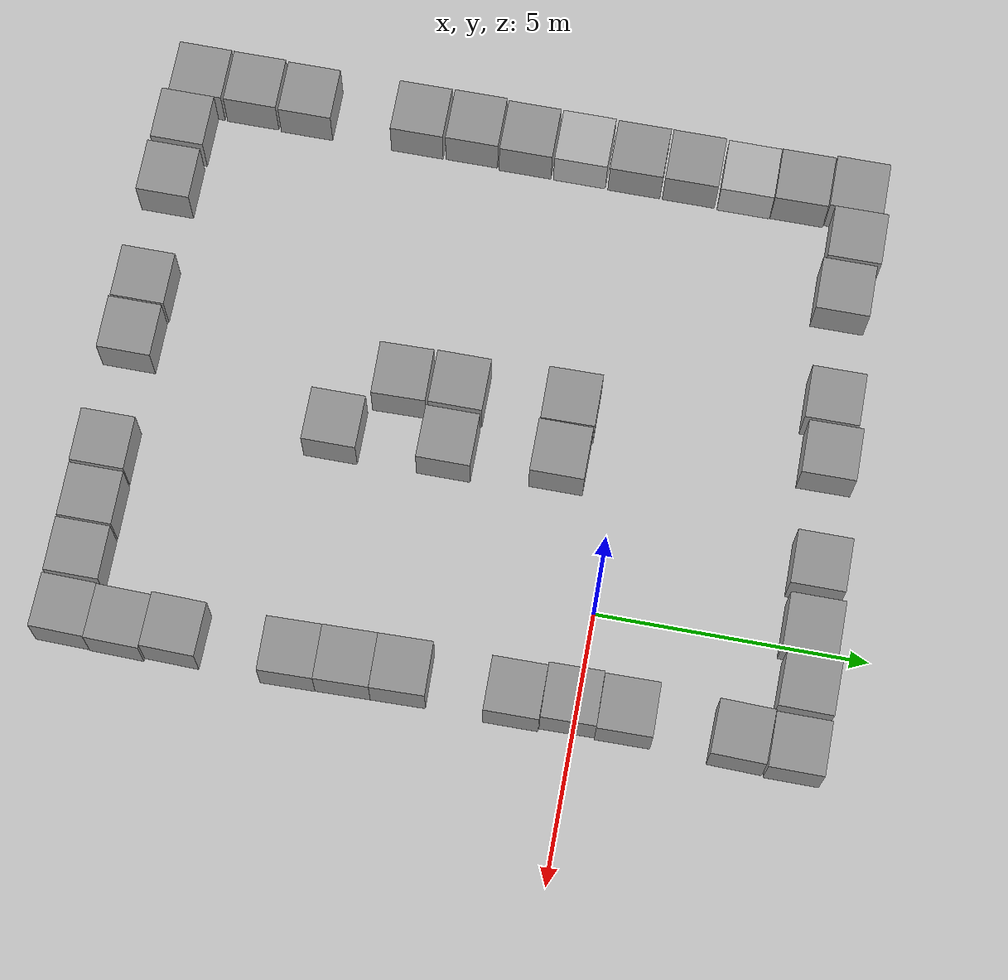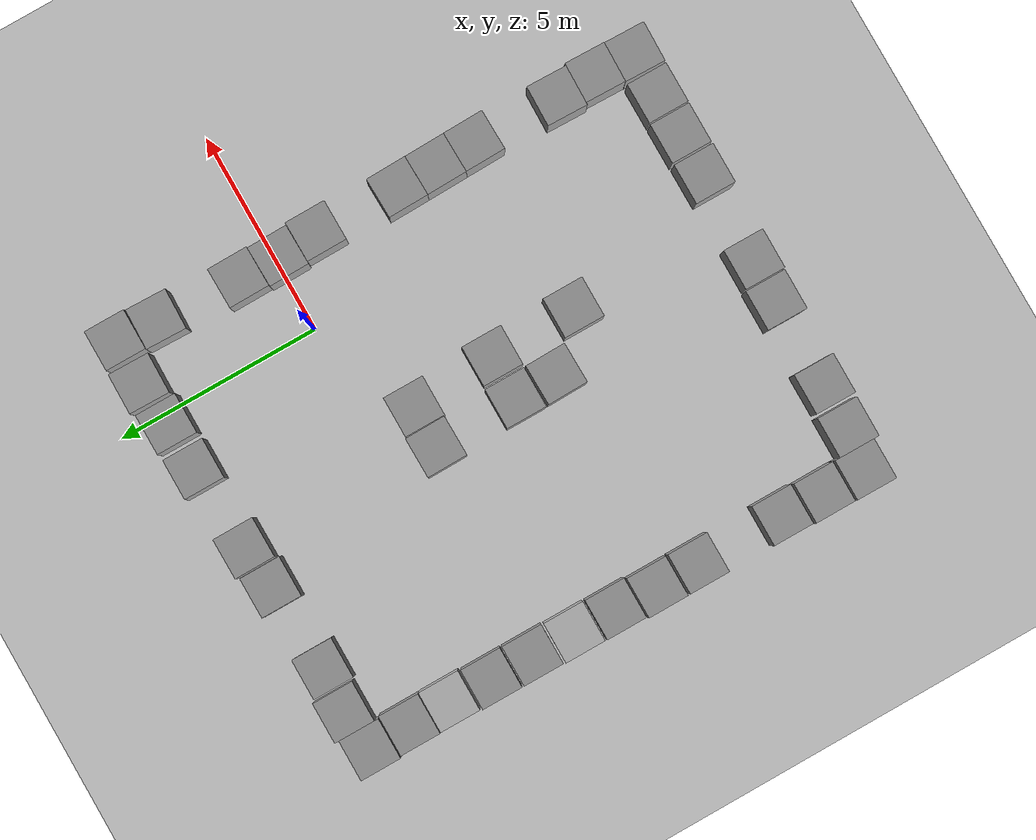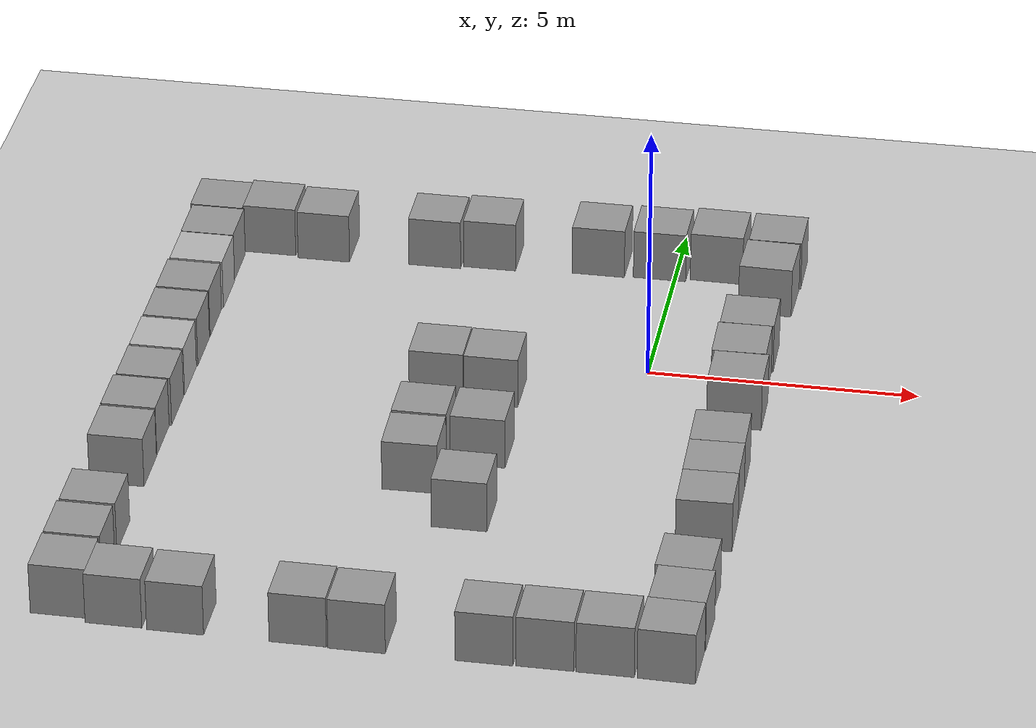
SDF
<sdf version="1.6">
 <world name="default">
  <light name="sun" type="directional">
   <pose>0 0 10 0 -0 0</pose>
   <diffuse>0.8 0.8 0.8 1</diffuse>
   <specular>0.2 0.2 0.2 1</specular>
   <attenuation>
    <range>1000</range>
    <constant>0.9</constant>
    <linear>0.01</linear>
    <quadratic>0.001</quadratic>
   </attenuation>
   <direction>-0.5 0.1 -0.9</direction>
  </light>
  <model name="ground_plane">
   <static>1</static>
   <link name="link">
    <collision name="collision">
     <geometry><plane><normal>0 0 1</normal><size>100 100</size></plane></geometry>
     <surface>
      <contact><collide_bitmask>65535</collide_bitmask></contact>
      <friction><ode><mu>100</mu><mu2>50</mu2></ode></friction>
     </surface>
    </collision>
    <visual name="visual">
     <cast_shadows>0</cast_shadows>
     <geometry><plane><normal>0 0 1</normal><size>100 100</size></plane></geometry>
     <material>
      <script><uri>file://media/materials/scripts/gazebo.material</uri><name>Gazebo/Grey</name></script>
     </material>
    </visual>
   </link>
  </model>
  <gravity>0 0 -9.8</gravity>
  <magnetic_field>6e-06 2.3e-05 -4.2e-05</magnetic_field>
  <atmosphere type="adiabatic"/>
  <physics name="default_physics" default="0" type="ode">
   <max_step_size>0.001</max_step_size>
   <real_time_factor>1</real_time_factor>
   <real_time_update_rate>1000</real_time_update_rate>
  </physics>
  <scene><ambient>0.4 0.4 0.4 1</ambient><background>0.7 0.7 0.7 1</background><shadows>1</shadows></scene>
  <audio><device>default</device></audio>
  <spherical_coordinates>
   <surface_model>EARTH_WGS84</surface_model>
   <latitude_deg>0</latitude_deg>
   <longitude_deg>0</longitude_deg>
   <elevation>0</elevation>
   <heading_deg>0</heading_deg>
  </spherical_coordinates>
  <model name="unit_box">
   <pose>-8.73208 0.394657 0.499995 1e-05 -0 -0.00012</pose>
   <link name="link">
    <inertial>
     <mass>1</mass>
     <inertia>
      <ixx>0.166667</ixx>
      <ixy>0</ixy>
      <ixz>0</ixz>
      <iyy>0.166667</iyy>
      <iyz>0</iyz>
      <izz>0.166667</izz>
     </inertia>
    </inertial>
    <collision name="collision"><geometry><box><size>1 1 1</size></box></geometry></collision>
    <visual name="visual">
     <geometry><box><size>1 1 1</size></box></geometry>
     <material>
      <script><name>Gazebo/Grey</name><uri>file://media/materials/scripts/gazebo.material</uri></script>
     </material>
    </visual>
   </link>
  </model>
  <model name="unit_box_1">
   <pose>-8.73525 -0.650647 0.499995 1e-05 -0 0</pose>
   <link name="link">
    <inertial>
     <mass>1</mass>
     <inertia>
      <ixx>0.166667</ixx>
      <ixy>0</ixy>
      <ixz>0</ixz>
      <iyy>0.166667</iyy>
      <iyz>0</iyz>
      <izz>0.166667</izz>
     </inertia>
    </inertial>
    <collision name="collision"><geometry><box><size>1 1 1</size></box></geometry></collision>
    <visual name="visual">
     <geometry><box><size>1 1 1</size></box></geometry>
     <material>
      <script><name>Gazebo/Grey</name><uri>file://media/materials/scripts/gazebo.material</uri></script>
     </material>
    </visual>
   </link>
  </model>
  <model name="unit_box_4">
   <pose>-2.54839 -3.15473 0.499995 1e-05 -0 0</pose>
   <link name="link">
    <inertial>
     <mass>1</mass>
     <inertia>
      <ixx>0.166667</ixx>
      <ixy>0</ixy>
      <ixz>0</ixz>
      <iyy>0.166667</iyy>
      <iyz>0</iyz>
      <izz>0.166667</izz>
     </inertia>
    </inertial>
    <collision name="collision"><geometry><box><size>1 1 1</size></box></geometry></collision>
    <visual name="visual">
     <geometry><box><size>1 1 1</size></box></geometry>
     <material>
      <script><name>Gazebo/Grey</name><uri>file://media/materials/scripts/gazebo.material</uri></script>
     </material>
    </visual>
   </link>
  </model>
  <model name="unit_box_6">
   <pose>-3.60588 -4.19146 0.499995 1e-05 -0 0.018583</pose>
   <link name="link">
    <inertial>
     <mass>1</mass>
     <inertia>
      <ixx>0.166667</ixx>
      <ixy>0</ixy>
      <ixz>0</ixz>
      <iyy>0.166667</iyy>
      <iyz>0</iyz>
      <izz>0.166667</izz>
     </inertia>
    </inertial>
    <collision name="collision"><geometry><box><size>1 1 1</size></box></geometry></collision>
    <visual name="visual">
     <geometry><box><size>1 1 1</size></box></geometry>
     <material>
      <script><name>Gazebo/Grey</name><uri>file://media/materials/scripts/gazebo.material</uri></script>
     </material>
    </visual>
   </link>
  </model>
  <model name="unit_box_8">
   <pose>-2.50852 -5.25525 0.499995 1e-05 -0 0</pose>
   <link name="link">
    <inertial>
     <mass>1</mass>
     <inertia>
      <ixx>0.166667</ixx>
      <ixy>0</ixy>
      <ixz>0</ixz>
      <iyy>0.166667</iyy>
      <iyz>0</iyz>
      <izz>0.166667</izz>
     </inertia>
    </inertial>
    <collision name="collision"><geometry><box><size>1 1 1</size></box></geometry></collision>
    <visual name="visual">
     <geometry><box><size>1 1 1</size></box></geometry>
     <material>
      <script><name>Gazebo/Grey</name><uri>file://media/materials/scripts/gazebo.material</uri></script>
     </material>
    </visual>
   </link>
  </model>
  <model name="unit_box_10">
   <pose>-3.62264 -3.13659 0.499995 1e-05 -0 0</pose>
   <link name="link">
    <inertial>
     <mass>1</mass>
     <inertia>
      <ixx>0.166667</ixx>
      <ixy>0</ixy>
      <ixz>0</ixz>
      <iyy>0.166667</iyy>
      <iyz>0</iyz>
      <izz>0.166667</izz>
     </inertia>
    </inertial>
    <collision name="collision"><geometry><box><size>1 1 1</size></box></geometry></collision>
    <visual name="visual">
     <geometry><box><size>1 1 1</size></box></geometry>
     <material>
      <script><name>Gazebo/Grey</name><uri>file://media/materials/scripts/gazebo.material</uri></script>
     </material>
    </visual>
   </link>
  </model>
  <model name="unit_box_13">
   <pose>-8.75933 -2.74939 0.499995 1e-05 -0 0</pose>
   <link name="link">
    <inertial>
     <mass>1</mass>
     <inertia>
      <ixx>0.166667</ixx>
      <ixy>0</ixy>
      <ixz>0</ixz>
      <iyy>0.166667</iyy>
      <iyz>0</iyz>
      <izz>0.166667</izz>
     </inertia>
    </inertial>
    <collision name="collision"><geometry><box><size>1 1 1</size></box></geometry></collision>
    <visual name="visual">
     <geometry><box><size>1 1 1</size></box></geometry>
     <material>
      <script><name>Gazebo/Grey</name><uri>file://media/materials/scripts/gazebo.material</uri></script>
     </material>
    </visual>
   </link>
  </model>
  <model name="unit_box_14">
   <pose>-8.79847 -3.78613 0.499995 0 1e-05 0</pose>
   <link name="link">
    <inertial>
     <mass>1</mass>
     <inertia>
      <ixx>0.166667</ixx>
      <ixy>0</ixy>
      <ixz>0</ixz>
      <iyy>0.166667</iyy>
      <iyz>0</iyz>
      <izz>0.166667</izz>
     </inertia>
    </inertial>
    <collision name="collision"><geometry><box><size>1 1 1</size></box></geometry></collision>
    <visual name="visual">
     <geometry><box><size>1 1 1</size></box></geometry>
     <material>
      <script><name>Gazebo/Grey</name><uri>file://media/materials/scripts/gazebo.material</uri></script>
     </material>
    </visual>
   </link>
  </model>
  <model name="unit_box_15">
   <pose>-8.79378 -4.83925 0.499995 1e-05 -0 0</pose>
   <link name="link">
    <inertial>
     <mass>1</mass>
     <inertia>
      <ixx>0.166667</ixx>
      <ixy>0</ixy>
      <ixz>0</ixz>
      <iyy>0.166667</iyy>
      <iyz>0</iyz>
      <izz>0.166667</izz>
     </inertia>
    </inertial>
    <collision name="collision"><geometry><box><size>1 1 1</size></box></geometry></collision>
    <visual name="visual">
     <geometry><box><size>1 1 1</size></box></geometry>
     <material>
      <script><name>Gazebo/Grey</name><uri>file://media/materials/scripts/gazebo.material</uri></script>
     </material>
    </visual>
   </link>
  </model>
  <model name="unit_box_17">
   <pose>-8.79105 -6.9817 0.499995 1e-05 -0 0</pose>
   <link name="link">
    <inertial>
     <mass>1</mass>
     <inertia>
      <ixx>0.166667</ixx>
      <ixy>0</ixy>
      <ixz>0</ixz>
      <iyy>0.166667</iyy>
      <iyz>0</iyz>
      <izz>0.166667</izz>
     </inertia>
    </inertial>
    <collision name="collision"><geometry><box><size>1 1 1</size></box></geometry></collision>
    <visual name="visual">
     <geometry><box><size>1 1 1</size></box></geometry>
     <material>
      <script><name>Gazebo/Grey</name><uri>file://media/materials/scripts/gazebo.material</uri></script>
     </material>
    </visual>
   </link>
  </model>
  <model name="unit_box_18">
   <pose>-8.81822 -8.03716 0.499995 0 1e-05 0</pose>
   <link name="link">
    <inertial>
     <mass>1</mass>
     <inertia>
      <ixx>0.166667</ixx>
      <ixy>0</ixy>
      <ixz>0</ixz>
      <iyy>0.166667</iyy>
      <iyz>0</iyz>
      <izz>0.166667</izz>
     </inertia>
    </inertial>
    <collision name="collision"><geometry><box><size>1 1 1</size></box></geometry></collision>
    <visual name="visual">
     <geometry><box><size>1 1 1</size></box></geometry>
     <material>
      <script><name>Gazebo/Grey</name><uri>file://media/materials/scripts/gazebo.material</uri></script>
     </material>
    </visual>
   </link>
  </model>
  <model name="unit_box_19">
   <pose>-8.82789 -9.08499 0.499995 1e-05 -0 -0.003825</pose>
   <link name="link">
    <inertial>
     <mass>1</mass>
     <inertia>
      <ixx>0.166667</ixx>
      <ixy>0</ixy>
      <ixz>0</ixz>
      <iyy>0.166667</iyy>
      <iyz>0</iyz>
      <izz>0.166667</izz>
     </inertia>
    </inertial>
    <collision name="collision"><geometry><box><size>1 1 1</size></box></geometry></collision>
    <visual name="visual">
     <geometry><box><size>1 1 1</size></box></geometry>
     <material>
      <script><name>Gazebo/Grey</name><uri>file://media/materials/scripts/gazebo.material</uri></script>
     </material>
    </visual>
   </link>
  </model>
  <model name="unit_box_20">
   <pose>-7.82836 -9.21753 0.499995 1e-05 -0 -0.003821</pose>
   <link name="link">
    <inertial>
     <mass>1</mass>
     <inertia>
      <ixx>0.166667</ixx>
      <ixy>0</ixy>
      <ixz>0</ixz>
      <iyy>0.166667</iyy>
      <iyz>0</iyz>
      <izz>0.166667</izz>
     </inertia>
    </inertial>
    <collision name="collision"><geometry><box><size>1 1 1</size></box></geometry></collision>
    <visual name="visual">
     <geometry><box><size>1 1 1</size></box></geometry>
     <material>
      <script><name>Gazebo/Grey</name><uri>file://media/materials/scripts/gazebo.material</uri></script>
     </material>
    </visual>
   </link>
  </model>
  <model name="unit_box_21">
   <pose>-6.73771 -9.24958 0.499995 0 -1e-05 -0.002543</pose>
   <link name="link">
    <inertial>
     <mass>1</mass>
     <inertia>
      <ixx>0.166667</ixx>
      <ixy>0</ixy>
      <ixz>0</ixz>
      <iyy>0.166667</iyy>
      <iyz>0</iyz>
      <izz>0.166667</izz>
     </inertia>
    </inertial>
    <collision name="collision"><geometry><box><size>1 1 1</size></box></geometry></collision>
    <visual name="visual">
     <geometry><box><size>1 1 1</size></box></geometry>
     <material>
      <script><name>Gazebo/Grey</name><uri>file://media/materials/scripts/gazebo.material</uri></script>
     </material>
    </visual>
   </link>
  </model>
  <model name="unit_box_23">
   <pose>-4.59276 -9.25098 0.499995 1e-05 0 -0.00204</pose>
   <link name="link">
    <inertial>
     <mass>1</mass>
     <inertia>
      <ixx>0.166667</ixx>
      <ixy>0</ixy>
      <ixz>0</ixz>
      <iyy>0.166667</iyy>
      <iyz>0</iyz>
      <izz>0.166667</izz>
     </inertia>
    </inertial>
    <collision name="collision"><geometry><box><size>1 1 1</size></box></geometry></collision>
    <visual name="visual">
     <geometry><box><size>1 1 1</size></box></geometry>
     <material>
      <script><name>Gazebo/Grey</name><uri>file://media/materials/scripts/gazebo.material</uri></script>
     </material>
    </visual>
   </link>
  </model>
  <model name="unit_box_24">
   <pose>-3.56354 -9.2781 0.499995 0 -1e-05 -0.002492</pose>
   <link name="link">
    <inertial>
     <mass>1</mass>
     <inertia>
      <ixx>0.166667</ixx>
      <ixy>0</ixy>
      <ixz>0</ixz>
      <iyy>0.166667</iyy>
      <iyz>0</iyz>
      <izz>0.166667</izz>
     </inertia>
    </inertial>
    <collision name="collision"><geometry><box><size>1 1 1</size></box></geometry></collision>
    <visual name="visual">
     <geometry><box><size>1 1 1</size></box></geometry>
     <material>
      <script><name>Gazebo/Grey</name><uri>file://media/materials/scripts/gazebo.material</uri></script>
     </material>
    </visual>
   </link>
  </model>
  <model name="unit_box_26">
   <pose>-1.35991 -9.27565 0.499995 0 1e-05 -0.000116</pose>
   <link name="link">
    <inertial>
     <mass>1</mass>
     <inertia>
      <ixx>0.166667</ixx>
      <ixy>0</ixy>
      <ixz>0</ixz>
      <iyy>0.166667</iyy>
      <iyz>0</iyz>
      <izz>0.166667</izz>
     </inertia>
    </inertial>
    <collision name="collision"><geometry><box><size>1 1 1</size></box></geometry></collision>
    <visual name="visual">
     <geometry><box><size>1 1 1</size></box></geometry>
     <material>
      <script><name>Gazebo/Grey</name><uri>file://media/materials/scripts/gazebo.material</uri></script>
     </material>
    </visual>
   </link>
  </model>
  <model name="unit_box_27">
   <pose>-0.310451 -9.26346 0.499995 -1e-05 0 -0.000115</pose>
   <link name="link">
    <inertial>
     <mass>1</mass>
     <inertia>
      <ixx>0.166667</ixx>
      <ixy>0</ixy>
      <ixz>0</ixz>
      <iyy>0.166667</iyy>
      <iyz>0</iyz>
      <izz>0.166667</izz>
     </inertia>
    </inertial>
    <collision name="collision"><geometry><box><size>1 1 1</size></box></geometry></collision>
    <visual name="visual">
     <geometry><box><size>1 1 1</size></box></geometry>
     <material>
      <script><name>Gazebo/Grey</name><uri>file://media/materials/scripts/gazebo.material</uri></script>
     </material>
    </visual>
   </link>
  </model>
  <model name="unit_box_28">
   <pose>0.725361 -9.26797 0.499995 1e-05 -0 0</pose>
   <link name="link">
    <inertial>
     <mass>1</mass>
     <inertia>
      <ixx>0.166667</ixx>
      <ixy>0</ixy>
      <ixz>0</ixz>
      <iyy>0.166667</iyy>
      <iyz>0</iyz>
      <izz>0.166667</izz>
     </inertia>
    </inertial>
    <collision name="collision"><geometry><box><size>1 1 1</size></box></geometry></collision>
    <visual name="visual">
     <geometry><box><size>1 1 1</size></box></geometry>
     <material>
      <script><name>Gazebo/Grey</name><uri>file://media/materials/scripts/gazebo.material</uri></script>
     </material>
    </visual>
   </link>
  </model>
  <model name="unit_box_29">
   <pose>1.81642 -8.28523 0.499995 0 1e-05 -0.020586</pose>
   <link name="link">
    <inertial>
     <mass>1</mass>
     <inertia>
      <ixx>0.166667</ixx>
      <ixy>0</ixy>
      <ixz>0</ixz>
      <iyy>0.166667</iyy>
      <iyz>0</iyz>
      <izz>0.166667</izz>
     </inertia>
    </inertial>
    <collision name="collision"><geometry><box><size>1 1 1</size></box></geometry></collision>
    <visual name="visual">
     <geometry><box><size>1 1 1</size></box></geometry>
     <material>
      <script><name>Gazebo/Grey</name><uri>file://media/materials/scripts/gazebo.material</uri></script>
     </material>
    </visual>
   </link>
  </model>
  <model name="unit_box_30">
   <pose>1.78155 -7.28421 0.499995 0 1e-05 -0.020586</pose>
   <link name="link">
    <inertial>
     <mass>1</mass>
     <inertia>
      <ixx>0.166667</ixx>
      <ixy>0</ixy>
      <ixz>0</ixz>
      <iyy>0.166667</iyy>
      <iyz>0</iyz>
      <izz>0.166667</izz>
     </inertia>
    </inertial>
    <collision name="collision"><geometry><box><size>1 1 1</size></box></geometry></collision>
    <visual name="visual">
     <geometry><box><size>1 1 1</size></box></geometry>
     <material>
      <script><name>Gazebo/Grey</name><uri>file://media/materials/scripts/gazebo.material</uri></script>
     </material>
    </visual>
   </link>
  </model>
  <model name="unit_box_32">
   <pose>1.81822 -5.17697 0.5 0 -0 0.023434</pose>
   <link name="link">
    <inertial>
     <mass>1</mass>
     <inertia>
      <ixx>0.166667</ixx>
      <ixy>0</ixy>
      <ixz>0</ixz>
      <iyy>0.166667</iyy>
      <iyz>0</iyz>
      <izz>0.166667</izz>
     </inertia>
    </inertial>
    <collision name="collision"><geometry><box><size>1 1 1</size></box></geometry></collision>
    <visual name="visual">
     <geometry><box><size>1 1 1</size></box></geometry>
     <material>
      <script><name>Gazebo/Grey</name><uri>file://media/materials/scripts/gazebo.material</uri></script>
     </material>
    </visual>
   </link>
  </model>
  <model name="unit_box_33">
   <pose>1.7916 -4.17732 0.499995 0 1e-05 0.023434</pose>
   <link name="link">
    <inertial>
     <mass>1</mass>
     <inertia>
      <ixx>0.166667</ixx>
      <ixy>0</ixy>
      <ixz>0</ixz>
      <iyy>0.166667</iyy>
      <iyz>0</iyz>
      <izz>0.166667</izz>
     </inertia>
    </inertial>
    <collision name="collision"><geometry><box><size>1 1 1</size></box></geometry></collision>
    <visual name="visual">
     <geometry><box><size>1 1 1</size></box></geometry>
     <material>
      <script><name>Gazebo/Grey</name><uri>file://media/materials/scripts/gazebo.material</uri></script>
     </material>
    </visual>
   </link>
  </model>
  <model name="unit_box_37">
   <pose>1.75968 0.885156 0.499995 1e-05 -0 0.012187</pose>
   <link name="link">
    <inertial>
     <mass>1</mass>
     <inertia>
      <ixx>0.166667</ixx>
      <ixy>0</ixy>
      <ixz>0</ixz>
      <iyy>0.166667</iyy>
      <iyz>0</iyz>
      <izz>0.166667</izz>
     </inertia>
    </inertial>
    <collision name="collision"><geometry><box><size>1 1 1</size></box></geometry></collision>
    <visual name="visual">
     <geometry><box><size>1 1 1</size></box></geometry>
     <material>
      <script><name>Gazebo/Grey</name><uri>file://media/materials/scripts/gazebo.material</uri></script>
     </material>
    </visual>
   </link>
  </model>
  <model name="unit_box_39">
   <pose>-1.45561 3.83114 0.499995 1e-05 -0 5.9e-05</pose>
   <link name="link">
    <inertial>
     <mass>1</mass>
     <inertia>
      <ixx>0.166667</ixx>
      <ixy>0</ixy>
      <ixz>0</ixz>
      <iyy>0.166667</iyy>
      <iyz>0</iyz>
      <izz>0.166667</izz>
     </inertia>
    </inertial>
    <collision name="collision"><geometry><box><size>1 1 1</size></box></geometry></collision>
    <visual name="visual">
     <geometry><box><size>1 1 1</size></box></geometry>
     <material>
      <script><name>Gazebo/Grey</name><uri>file://media/materials/scripts/gazebo.material</uri></script>
     </material>
    </visual>
   </link>
  </model>
  <model name="unit_box_40">
   <pose>-0.290687 3.86971 0.499995 1e-05 -0 0</pose>
   <link name="link">
    <inertial>
     <mass>1</mass>
     <inertia>
      <ixx>0.166667</ixx>
      <ixy>0</ixy>
      <ixz>0</ixz>
      <iyy>0.166667</iyy>
      <iyz>0</iyz>
      <izz>0.166667</izz>
     </inertia>
    </inertial>
    <collision name="collision"><geometry><box><size>1 1 1</size></box></geometry></collision>
    <visual name="visual">
     <geometry><box><size>1 1 1</size></box></geometry>
     <material>
      <script><name>Gazebo/Grey</name><uri>file://media/materials/scripts/gazebo.material</uri></script>
     </material>
    </visual>
   </link>
  </model>
  <model name="unit_box_42">
   <pose>0.79205 3.95614 0.499995 1e-05 -0 -0.012034</pose>
   <link name="link">
    <inertial>
     <mass>1</mass>
     <inertia>
      <ixx>0.166667</ixx>
      <ixy>0</ixy>
      <ixz>0</ixz>
      <iyy>0.166667</iyy>
      <iyz>0</iyz>
      <izz>0.166667</izz>
     </inertia>
    </inertial>
    <collision name="collision"><geometry><box><size>1 1 1</size></box></geometry></collision>
    <visual name="visual">
     <geometry><box><size>1 1 1</size></box></geometry>
     <material>
      <script><name>Gazebo/Grey</name><uri>file://media/materials/scripts/gazebo.material</uri></script>
     </material>
    </visual>
   </link>
  </model>
  <model name="unit_box_43">
   <pose>1.85421 2.92949 0.499995 1e-05 -0 -0.023604</pose>
   <link name="link">
    <inertial>
     <mass>1</mass>
     <inertia>
      <ixx>0.166667</ixx>
      <ixy>0</ixy>
      <ixz>0</ixz>
      <iyy>0.166667</iyy>
      <iyz>0</iyz>
      <izz>0.166667</izz>
     </inertia>
    </inertial>
    <collision name="collision"><geometry><box><size>1 1 1</size></box></geometry></collision>
    <visual name="visual">
     <geometry><box><size>1 1 1</size></box></geometry>
     <material>
      <script><name>Gazebo/Grey</name><uri>file://media/materials/scripts/gazebo.material</uri></script>
     </material>
    </visual>
   </link>
  </model>
  <model name="unit_box_45">
   <pose>-3.53266 3.72336 0.499995 0 1e-05 0.00487</pose>
   <link name="link">
    <inertial>
     <mass>1</mass>
     <inertia>
      <ixx>0.166667</ixx>
      <ixy>0</ixy>
      <ixz>0</ixz>
      <iyy>0.166667</iyy>
      <iyz>0</iyz>
      <izz>0.166667</izz>
     </inertia>
    </inertial>
    <collision name="collision"><geometry><box><size>1 1 1</size></box></geometry></collision>
    <visual name="visual">
     <geometry><box><size>1 1 1</size></box></geometry>
     <material>
      <script><name>Gazebo/Grey</name><uri>file://media/materials/scripts/gazebo.material</uri></script>
     </material>
    </visual>
   </link>
  </model>
  <model name="unit_box_46">
   <pose>-4.57517 3.63076 0.499995 -1e-05 0 0.00262</pose>
   <link name="link">
    <inertial>
     <mass>1</mass>
     <inertia>
      <ixx>0.166667</ixx>
      <ixy>0</ixy>
      <ixz>0</ixz>
      <iyy>0.166667</iyy>
      <iyz>0</iyz>
      <izz>0.166667</izz>
     </inertia>
    </inertial>
    <collision name="collision"><geometry><box><size>1 1 1</size></box></geometry></collision>
    <visual name="visual">
     <geometry><box><size>1 1 1</size></box></geometry>
     <material>
      <script><name>Gazebo/Grey</name><uri>file://media/materials/scripts/gazebo.material</uri></script>
     </material>
    </visual>
   </link>
  </model>
  <model name="unit_box_48">
   <pose>-6.70132 3.5177 0.499995 0 1e-05 0</pose>
   <link name="link">
    <inertial>
     <mass>1</mass>
     <inertia>
      <ixx>0.166667</ixx>
      <ixy>0</ixy>
      <ixz>0</ixz>
      <iyy>0.166667</iyy>
      <iyz>0</iyz>
      <izz>0.166667</izz>
     </inertia>
    </inertial>
    <collision name="collision"><geometry><box><size>1 1 1</size></box></geometry></collision>
    <visual name="visual">
     <geometry><box><size>1 1 1</size></box></geometry>
     <material>
      <script><name>Gazebo/Grey</name><uri>file://media/materials/scripts/gazebo.material</uri></script>
     </material>
    </visual>
   </link>
  </model>
  <model name="unit_box_49">
   <pose>-7.75877 3.58603 0.499995 -0 -1e-05 0.000444</pose>
   <link name="link">
    <inertial>
     <mass>1</mass>
     <inertia>
      <ixx>0.166667</ixx>
      <ixy>0</ixy>
      <ixz>0</ixz>
      <iyy>0.166667</iyy>
      <iyz>0</iyz>
      <izz>0.166667</izz>
     </inertia>
    </inertial>
    <collision name="collision"><geometry><box><size>1 1 1</size></box></geometry></collision>
    <visual name="visual">
     <geometry><box><size>1 1 1</size></box></geometry>
     <material>
      <script><name>Gazebo/Grey</name><uri>file://media/materials/scripts/gazebo.material</uri></script>
     </material>
    </visual>
   </link>
  </model>
  <model name="unit_box_50">
   <pose>-8.75874 3.48617 0.499995 1e-05 -0 0.000434</pose>
   <link name="link">
    <inertial>
     <mass>1</mass>
     <inertia>
      <ixx>0.166667</ixx>
      <ixy>0</ixy>
      <ixz>0</ixz>
      <iyy>0.166667</iyy>
      <iyz>0</iyz>
      <izz>0.166667</izz>
     </inertia>
    </inertial>
    <collision name="collision"><geometry><box><size>1 1 1</size></box></geometry></collision>
    <visual name="visual">
     <geometry><box><size>1 1 1</size></box></geometry>
     <material>
      <script><name>Gazebo/Grey</name><uri>file://media/materials/scripts/gazebo.material</uri></script>
     </material>
    </visual>
   </link>
  </model>
  <model name="unit_box_51">
   <pose>-8.71677 2.46298 0.499995 1e-05 -0 0.000652</pose>
   <link name="link">
    <inertial>
     <mass>1</mass>
     <inertia>
      <ixx>0.166667</ixx>
      <ixy>0</ixy>
      <ixz>0</ixz>
      <iyy>0.166667</iyy>
      <iyz>0</iyz>
      <izz>0.166667</izz>
     </inertia>
    </inertial>
    <collision name="collision"><geometry><box><size>1 1 1</size></box></geometry></collision>
    <visual name="visual">
     <geometry><box><size>1 1 1</size></box></geometry>
     <material>
      <script><name>Gazebo/Grey</name><uri>file://media/materials/scripts/gazebo.material</uri></script>
     </material>
    </visual>
   </link>
  </model>
  <light name="user_point_light_0" type="point">
   <pose>-6.14571 -6.63651 1 0 -0 0</pose>
   <diffuse>0.5 0.5 0.5 1</diffuse>
   <specular>0.1 0.1 0.1 1</specular>
   <attenuation>
    <range>20</range>
    <constant>0.5</constant>
    <linear>0.01</linear>
    <quadratic>0.001</quadratic>
   </attenuation>
   <cast_shadows>0</cast_shadows>
   <direction>0 0 -1</direction>
  </light>
  <light name="user_point_light_1" type="point">
   <pose>-6.11805 1.067 1 0 -0 0</pose>
   <diffuse>0.5 0.5 0.5 1</diffuse>
   <specular>0.1 0.1 0.1 1</specular>
   <attenuation>
    <range>20</range>
    <constant>0.5</constant>
    <linear>0.01</linear>
    <quadratic>0.001</quadratic>
   </attenuation>
   <cast_shadows>0</cast_shadows>
   <direction>0 0 -1</direction>
  </light>
  <light name="user_point_light_2" type="point">
   <pose>-0.573578 1.35587 1 0 -0 0</pose>
   <diffuse>0.5 0.5 0.5 1</diffuse>
   <specular>0.1 0.1 0.1 1</specular>
   <attenuation>
    <range>20</range>
    <constant>0.5</constant>
    <linear>0.01</linear>
    <quadratic>0.001</quadratic>
   </attenuation>
   <cast_shadows>0</cast_shadows>
   <direction>0 0 -1</direction>
  </light>
  <light name="user_point_light_3" type="point">
   <pose>-1.02944 -6.8098 1 0 -0 0</pose>
   <diffuse>0.5 0.5 0.5 1</diffuse>
   <specular>0.1 0.1 0.1 1</specular>
   <attenuation>
    <range>20</range>
    <constant>0.5</constant>
    <linear>0.01</linear>
    <quadratic>0.001</quadratic>
   </attenuation>
   <cast_shadows>0</cast_shadows>
   <direction>0 0 -1</direction>
  </light>
  <model name="unit_box_11">
   <pose>-3.69055 -1.07429 0.499995 0 1e-05 0.011327</pose>
   <link name="link">
    <inertial>
     <mass>1</mass>
     <inertia>
      <ixx>0.166667</ixx>
      <ixy>0</ixy>
      <ixz>0</ixz>
      <iyy>0.166667</iyy>
      <iyz>0</iyz>
      <izz>0.166667</izz>
     </inertia>
    </inertial>
    <collision name="collision"><geometry><box><size>1 1 1</size></box></geometry></collision>
    <visual name="visual">
     <geometry><box><size>1 1 1</size></box></geometry>
     <material>
      <script><name>Gazebo/Grey</name><uri>file://media/materials/scripts/gazebo.material</uri></script>
     </material>
    </visual>
   </link>
  </model>
  <model name="unit_box_12">
   <pose>-2.66997 -1.09032 0.499995 1e-05 -0 0</pose>
   <link name="link">
    <inertial>
     <mass>1</mass>
     <inertia>
      <ixx>0.166667</ixx>
      <ixy>0</ixy>
      <ixz>0</ixz>
      <iyy>0.166667</iyy>
      <iyz>0</iyz>
      <izz>0.166667</izz>
     </inertia>
    </inertial>
    <collision name="collision"><geometry><box><size>1 1 1</size></box></geometry></collision>
    <visual name="visual">
     <geometry><box><size>1 1 1</size></box></geometry>
     <material>
      <script><name>Gazebo/Grey</name><uri>file://media/materials/scripts/gazebo.material</uri></script>
     </material>
    </visual>
   </link>
  </model>
  <model name="unit_box_34">
   <pose>1.76818 -3.17725 0.5 0 -0 0.024117</pose>
   <link name="link">
    <inertial>
     <mass>1</mass>
     <inertia>
      <ixx>0.166667</ixx>
      <ixy>0</ixy>
      <ixz>0</ixz>
      <iyy>0.166667</iyy>
      <iyz>0</iyz>
      <izz>0.166667</izz>
     </inertia>
    </inertial>
    <collision name="collision"><geometry><box><size>1 1 1</size></box></geometry></collision>
    <visual name="visual">
     <geometry><box><size>1 1 1</size></box></geometry>
     <material>
      <script><name>Gazebo/Grey</name><uri>file://media/materials/scripts/gazebo.material</uri></script>
     </material>
    </visual>
   </link>
  </model>
  <model name="unit_box_36">
   <pose>1.80821 -1.12179 0.499995 0 1e-05 0.007681</pose>
   <link name="link">
    <inertial>
     <mass>1</mass>
     <inertia>
      <ixx>0.166667</ixx>
      <ixy>0</ixy>
      <ixz>0</ixz>
      <iyy>0.166667</iyy>
      <iyz>0</iyz>
      <izz>0.166667</izz>
     </inertia>
    </inertial>
    <collision name="collision"><geometry><box><size>1 1 1</size></box></geometry></collision>
    <visual name="visual">
     <geometry><box><size>1 1 1</size></box></geometry>
     <material>
      <script><name>Gazebo/Grey</name><uri>file://media/materials/scripts/gazebo.material</uri></script>
     </material>
    </visual>
   </link>
  </model>
  <model name="unit_box_52">
   <pose>1.74259 -0.118035 0.499995 1e-05 -0 0.017177</pose>
   <link name="link">
    <inertial>
     <mass>1</mass>
     <inertia>
      <ixx>0.166667</ixx>
      <ixy>0</ixy>
      <ixz>0</ixz>
      <iyy>0.166667</iyy>
      <iyz>0</iyz>
      <izz>0.166667</izz>
     </inertia>
    </inertial>
    <collision name="collision"><geometry><box><size>1 1 1</size></box></geometry></collision>
    <visual name="visual">
     <geometry><box><size>1 1 1</size></box></geometry>
     <material>
      <script><name>Gazebo/Grey</name><uri>file://media/materials/scripts/gazebo.material</uri></script>
     </material>
    </visual>
   </link>
  </model>
  <model name="unit_box_41">
   <pose>1.78567 -9.28482 0.499995 0 -1e-05 -0.020587</pose>
   <link name="link">
    <inertial>
     <mass>1</mass>
     <inertia>
      <ixx>0.166667</ixx>
      <ixy>0</ixy>
      <ixz>0</ixz>
      <iyy>0.166667</iyy>
      <iyz>0</iyz>
      <izz>0.166667</izz>
     </inertia>
    </inertial>
    <collision name="collision"><geometry><box><size>1 1 1</size></box></geometry></collision>
    <visual name="visual">
     <geometry><box><size>1 1 1</size></box></geometry>
     <material>
      <script><name>Gazebo/Grey</name><uri>file://media/materials/scripts/gazebo.material</uri></script>
     </material>
    </visual>
   </link>
  </model>
  <model name="unit_box_53">
   <pose>1.89369 3.9453 0.499995 1e-05 -0 0</pose>
   <link name="link">
    <inertial>
     <mass>1</mass>
     <inertia>
      <ixx>0.166667</ixx>
      <ixy>0</ixy>
      <ixz>0</ixz>
      <iyy>0.166667</iyy>
      <iyz>0</iyz>
      <izz>0.166667</izz>
     </inertia>
    </inertial>
    <collision name="collision"><geometry><box><size>1 1 1</size></box></geometry></collision>
    <visual name="visual">
     <geometry><box><size>1 1 1</size></box></geometry>
     <material>
      <script><name>Gazebo/Grey</name><uri>file://media/materials/scripts/gazebo.material</uri></script>
     </material>
    </visual>
   </link>
  </model>
  <model name="apriltag2">
   <pose>-8.25174 -1.70236 0.5 0 -0 0</pose>
   <static>1</static>
   <link name="link">
    <collision name="collision">
     <pose>-0.5 0 0 0 -0 0</pose>
     <geometry><box><size>1 1 1</size></box></geometry>
    </collision>
    <visual name="visual">
     <pose>-0.5 0 0 0 -0 0</pose>
     <geometry><mesh><uri>model://apriltag_2/meshes/aptag_2.dae</uri></mesh></geometry>
    </visual>
   </link>
  </model>
  <model name="apriltag3">
   <pose>-8.20742 1.44827 0.5 0 -0 0</pose>
   <static>1</static>
   <link name="link">
    <collision name="collision">
     <pose>-0.5 0 0 0 -0 0</pose>
     <geometry><box><size>1 1 1</size></box></geometry>
    </collision>
    <visual name="visual">
     <pose>-0.5 0 0 0 -0 0</pose>
     <geometry><mesh><uri>model://apriltag_3/meshes/aptag_3.dae</uri></mesh></geometry>
    </visual>
   </link>
  </model>
 </world>
</sdf>
